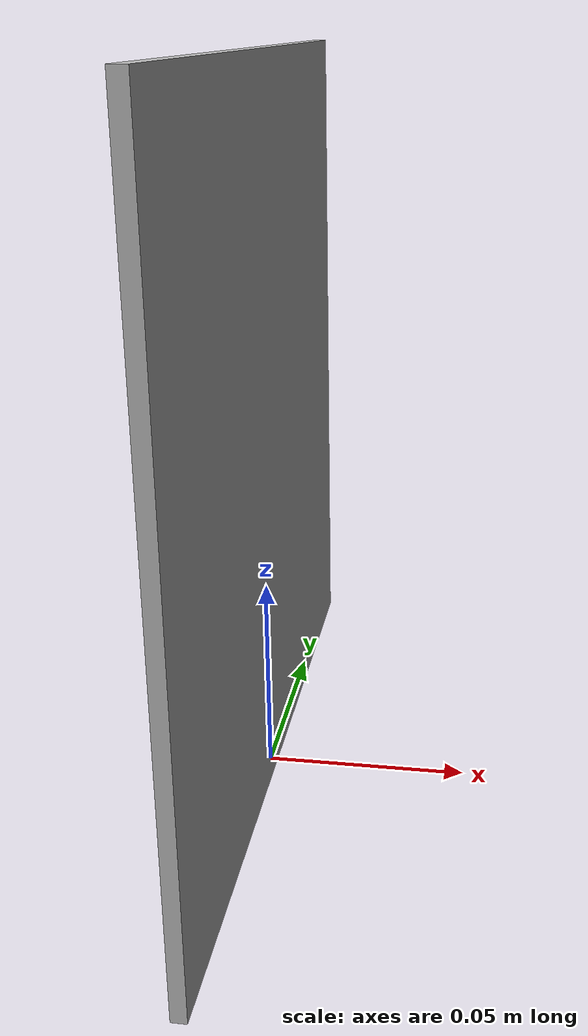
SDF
<?xml version="1.0" ?><sdf version="1.6">
  <model name="aruco_mark_3">
    <static>true</static>
    <link name="link">
      <visual name="visual">
        <geometry>
          <mesh>
            <uri>model://aruco_mark_3/meshes/aruco_mark_3.dae</uri>
          <scale>0.354 0.354 0.354</scale></mesh>
        </geometry>
      </visual>
    </link>
  </model>
</sdf>
